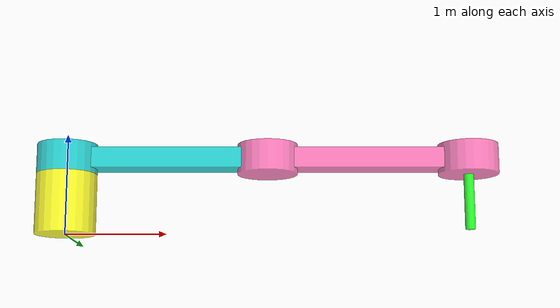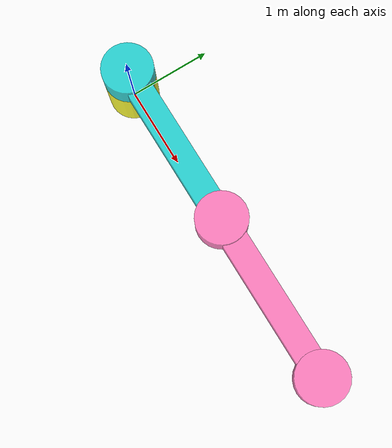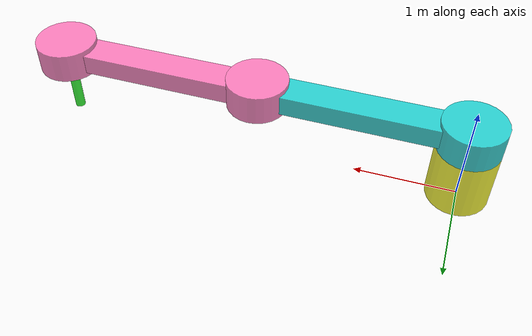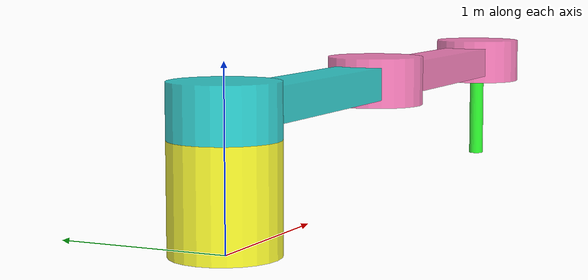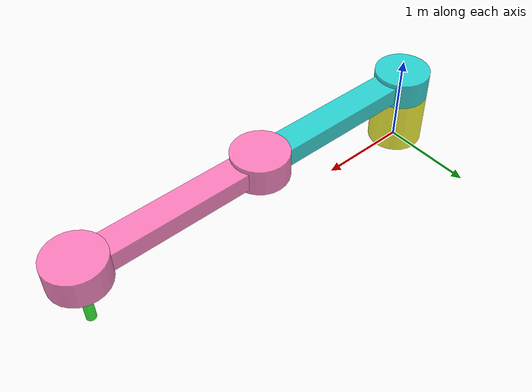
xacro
<?xml version="1.0"?>
<robot xmlns:xacro="http://www.ros.org/wiki/xacro" name="scara">
<xacro:property name="cyl_radius" value="0.3" />
<xacro:property name="cyl_length" value="0.6" />
<xacro:property name="rect_length" value="2" />
<xacro:property name="rect_height" value="0.2" />
<xacro:property name="rect_width" value="0.3" />
<xacro:property name="cyl2_length" value="0.3" />
<xacro:property name="ee_radius" value="0.05" />

<!--    Materials-->
<material name = 'blue'>
    <color rgba="0 0.8 0.8 0.8"/>
</material>

<material name = 'yellow'>
    <color rgba="1 1 0 0.8"/>
</material>

<material name = 'pink'>
    <color rgba="1 0.4 0.7 0.8"/>
</material>

<material name = 'green'>
    <color rgba="0 1 0 0.8"/>
</material>

<!--Base link -->
<link name="base_link">
    <visual>
        <origin xyz="0 0 ${cyl_length/2}"/>
        <geometry>
            <cylinder length="${cyl_length}" radius="${cyl_radius}"/>
        </geometry>
        <material name = 'yellow'/>
    </visual>
</link>

<joint name="base_link_to_link1" type="continuous">
    <parent link="base_link"/>
    <child link="link1"/>
    <axis xyz="0 0 1"/>
    <origin xyz="0 0 ${cyl_length + cyl2_length/2 - rect_height/2}"/>
</joint>

<!--Link 1-->
<link name="link1">
    <visual>
        <origin xyz="${rect_length/2} 0 ${rect_height/2}"/>
        <geometry>
            <box size = "${rect_length} ${rect_width} ${rect_height}" />
        </geometry>
        <material name = 'blue'/>
    </visual>
</link>

<link name="link1_visual">
    <visual>
        <origin xyz="0 0 ${cyl2_length/2}"/>
        <geometry>
            <cylinder length="${cyl2_length}" radius="${cyl_radius}" />
        </geometry>
        <material name = 'blue'/>
    </visual>
</link>

<joint name="link1_to_link1_visual" type="fixed">
    <parent link="link1"/>
    <child link="link1_visual"/>
    <origin xyz="0 0 ${-cyl2_length/2 + rect_height/2}"/>
</joint>

<joint name="link1_to_link2" type="continuous">
    <parent link="link1"/>
    <child link="link2"/>
    <axis xyz="0 0 1"/>
    <origin xyz="${rect_length} 0 0"/>
</joint>

<!--Link 2-->
<link name="link2">
    <visual>
        <origin xyz="${rect_length/2} 0 ${rect_height/2}"/>
        <geometry>
            <box size = "${rect_length} ${rect_width} ${rect_height}" />
        </geometry>
        <material name = 'pink'/>
    </visual>
</link>

<link name="link2_visual">
    <visual>
        <origin xyz="0 0 ${cyl2_length/2}"/>
        <geometry>
            <cylinder length="${cyl2_length}" radius="${cyl_radius}" />
        </geometry>
        <material name = 'pink'/>
    </visual>
</link>

<joint name="link2_to_link2_visual" type="fixed">
    <parent link="link2"/>
    <child link="link2_visual"/>
    <origin xyz="0 0 ${-cyl2_length/2 + rect_height/2}"/>
</joint>

<joint name="link2_to_ee_link" type="prismatic">
    <parent link="link2"/>
    <child link="ee_link"/>
    <limit effort="1000.0" lower="0" upper="0.6" velocity="0.5"/>
    <axis xyz="0 0 1"/>
    <origin xyz="${rect_length} 0 0"/>
</joint>

<!--    Ee_link-->
<link name="ee_link">
    <visual>
        <origin xyz="0 0 -${cyl_length/2}"/>
        <geometry>
            <cylinder length="${cyl_length}" radius="${ee_radius}" />
        </geometry>
        <material name = 'green'/>
    </visual>
</link>

<link name="ee_link_visual">
    <visual>
        <origin xyz="0 0 ${cyl2_length - rect_height}"/>
        <geometry>
            <cylinder length="${cyl2_length}" radius="${cyl_radius}" />
        </geometry>
        <material name = 'pink'/>
    </visual>
</link>

<joint name="link2_to_ee_link_visual" type="fixed">
    <parent link="link2"/>
    <child link="ee_link_visual"/>
    <origin xyz="${rect_length} 0 0"/>
</joint>

</robot>
